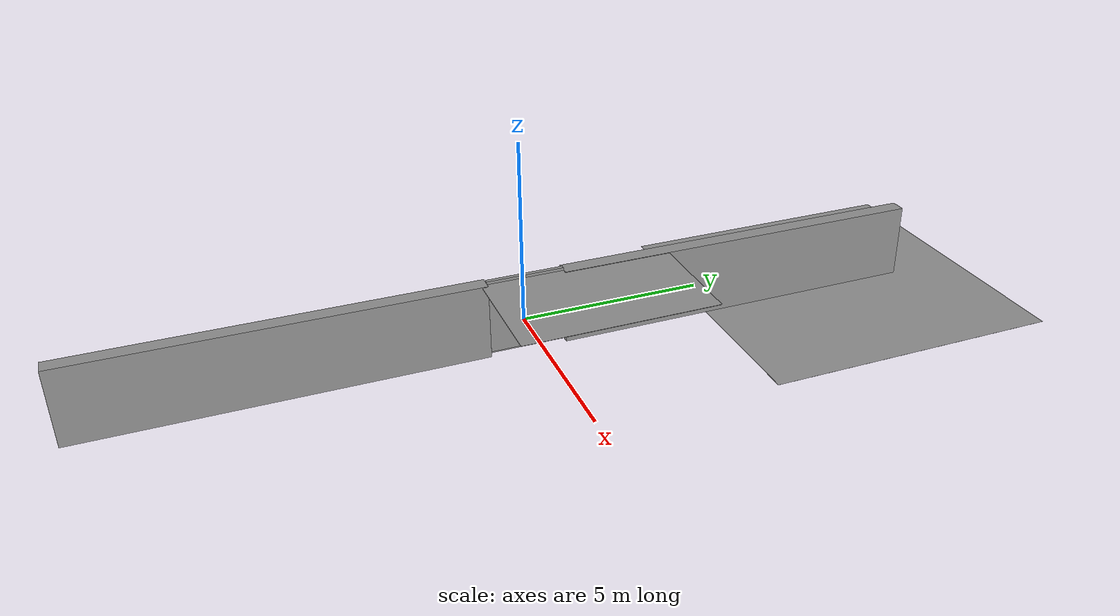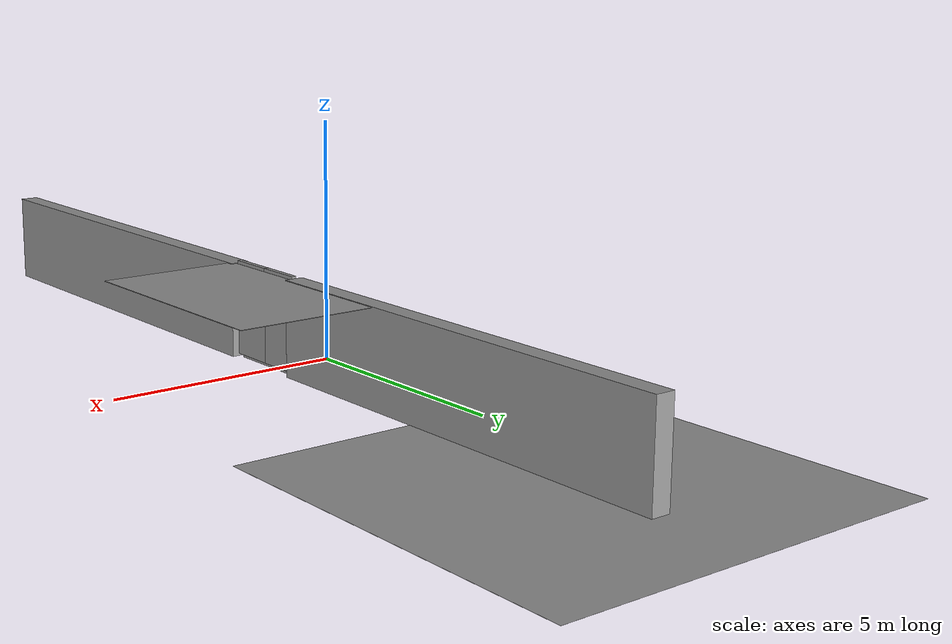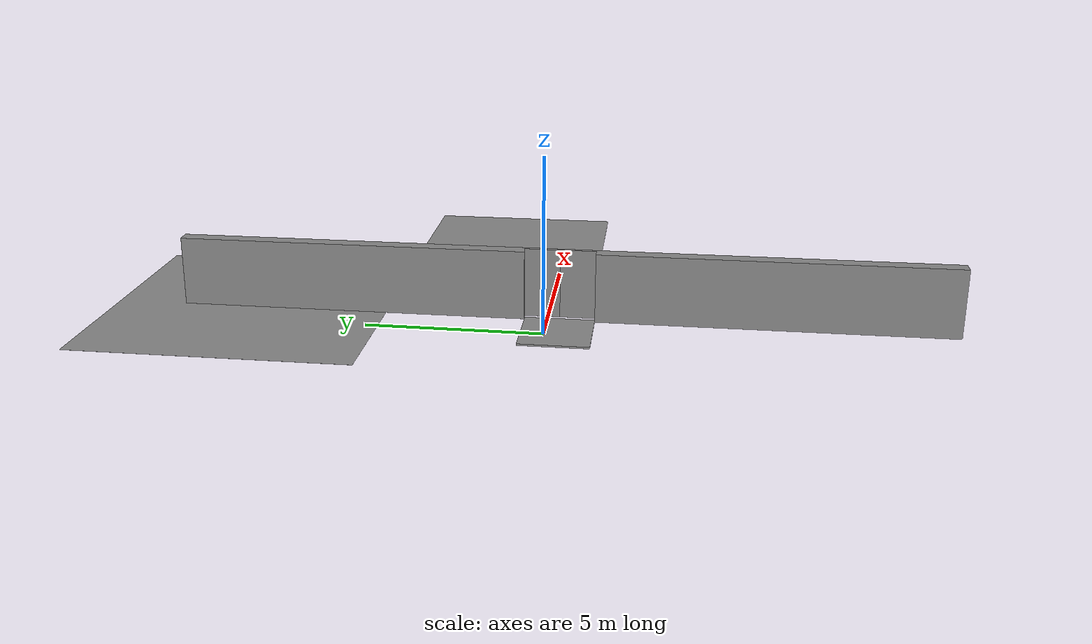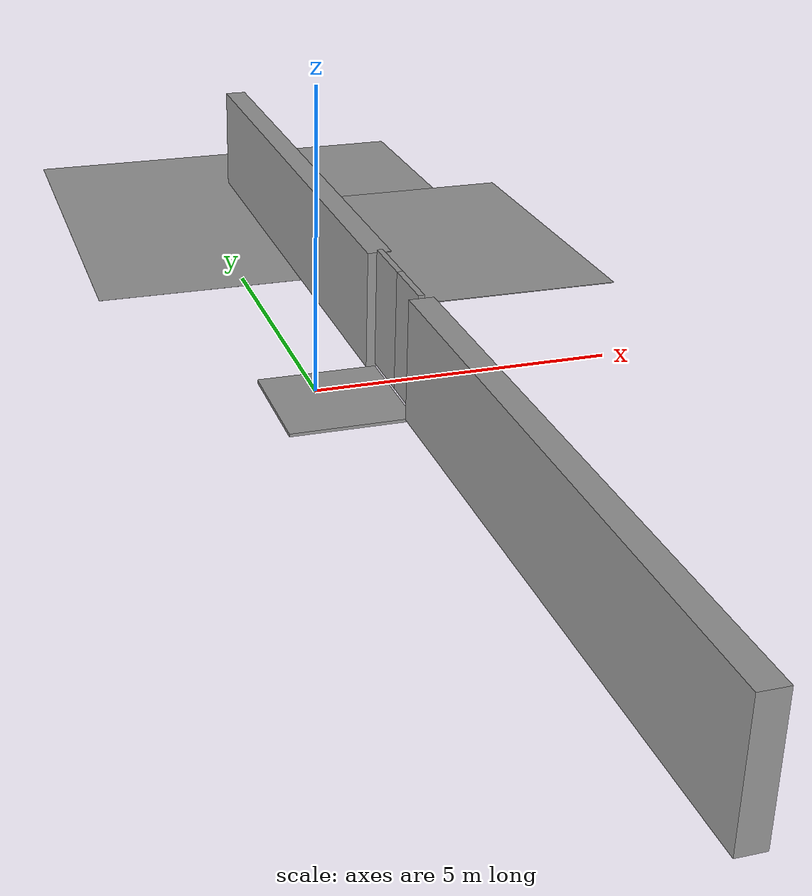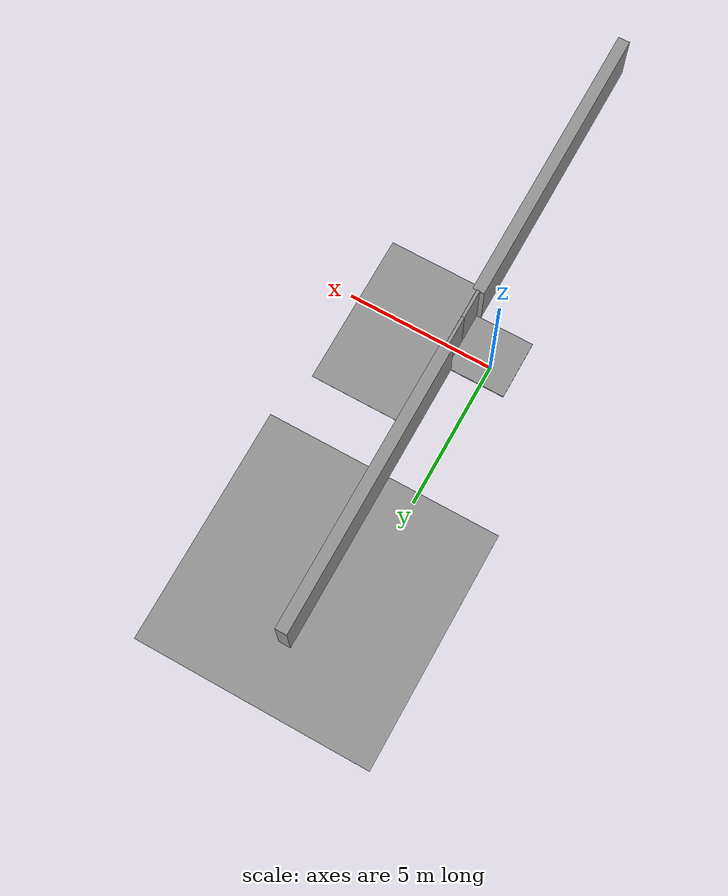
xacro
<?xml version="1.0"?>
<robot name="elevator" xmlns:xacro="http://www.ros.org/wiki/xacro">

  <xacro:property name="M_PI" value="3.141592653589793" />
  <xacro:property name="storey_height" value="2" />
  <xacro:property name="elev_door_height" value="2" />
  <xacro:property name="wall_x_loc" value="1.25" />

  <link name="world" />

  <!-- floor 1 -->
  <joint name="floor1_joint" type="fixed">
    <parent link="world" />
    <origin xyz="${wall_x_loc} 0.65 0.0" rpy="0 0 0" />
    <child link="floor1_link" />
  </joint>
  <link name="floor1_link">
    <inertial>
      <mass value="100" />
      <com xyz="0 0 0.0" />
      <inertia ixx="10" ixy="0"  ixz="0"
                        iyy="10" iyz="0"
                                 izz="10" />
    </inertial>
    <visual>
      <origin xyz="0 8 0.001" rpy="0 0 0" />
      <geometry name="floor1_visual_geom">
        <box size="8 8 0.002" />
      </geometry>
    </visual>
    <collision>
      <origin xyz="0 8 0.001" rpy="0.0 0.0 0.0" />
      <geometry name="floor1_collision_geom">
        <box size="8 8 0.002" />
      </geometry>
    </collision>
  </link>
  <gazebo reference="floor1_link">
    <material>PR2/Grey</material>
    <mu1>50.0</mu1>
    <mu2>50.0</mu2>
    <kp>1000000000.0</kp>
    <kd>1.0</kd>
  </gazebo>

  <!-- floor 2 -->
  <joint name="floor2_joint" type="fixed">
    <parent link="world" />
    <origin xyz="2.82  1  ${storey_height - 0.02}" rpy="0 0 0" />
    <child link="floor2_link" />
  </joint>
  <link name="floor2_link">
    <inertial>
      <mass value="100" />
      <com xyz="0 0 0" />
      <inertia ixx="10" ixy="0"  ixz="0"
                        iyy="10" iyz="0"
                                 izz="10" />
    </inertial>
    <visual>
      <origin xyz="0 0 0.001" rpy="0 0 0" />
      <geometry name="floor2_visual_geom">
        <box size="3 5 0.01" />
      </geometry>
    </visual>
    <collision>
      <origin xyz="0 0 0.001" rpy="0 0 0" />
      <geometry name="floor2_collision_geom">
        <box size="3 5 0.01" />
      </geometry>
    </collision>
  </link>
  <gazebo reference="floor2_link">
    <material>PR2/Grey</material>
    <mu1>50.0</mu1>
    <mu2>50.0</mu2>
    <kp>1000000000.0</kp>
    <kd>1.0</kd>
  </gazebo>

  <!-- RHS Door -->
  <joint name="wall_rhs_joint" type="fixed" >
    <parent link="floor1_link" />
    <origin xyz="0 0.0 0" rpy="0 0 0" />
    <child link="wall_rhs_link" />
  </joint>
  <link name="wall_rhs_link">
    <inertial>
      <mass value="100" />
      <com xyz="0 5 1" />
      <inertia ixx="10" ixy="0"  ixz="0"
                        iyy="10" iyz="0"
                                 izz="10" />
    </inertial>
    <visual>
      <origin xyz="0 5 1" rpy="0 0 0" />
      <geometry name="wall_rhs_visual_geom">
        <box size="0.4 10 ${storey_height}" />
      </geometry>
    </visual>
    <collision>
      <origin xyz="0 5 1" rpy="0.0 0.0 0.0" />
      <geometry name="wall_rhs_collision_geom">
        <box size="0.4 10 ${storey_height}" />
      </geometry>
    </collision>
  </link>
  <gazebo reference="wall_rhs_link">
    <material>PR2/Grey2</material>
    <laserRetro>1000</laserRetro>
    <selfCollide>false</selfCollide>
    <turnGravityOff>true</turnGravityOff>
  </gazebo>

  <joint name="elevator_door_rhs_joint" type="prismatic" >
    <parent link="wall_rhs_link" />
    <child link="elevator_door_rhs_link" />
    <origin xyz="0 0 0.05" rpy="0 0 0" />
    <axis xyz="0 1 0" />
    <dynamics damping="0.7" />
    <limit lower="0"  upper="1"  effort="100000"  velocity="100000" />
  </joint>

  <link name="elevator_door_rhs_link">
    <inertial >
      <mass value="30" />
      <com xyz="0.0 -0.5 1.0" />
      <inertia  ixx="1.0" ixy="0.0" ixz="0.0"
                          iyy="1.0" iyz="0.0"
                                    izz="3.0" />
    </inertial>
    <visual >
      <origin xyz="0.0 -0.5 1.0" rpy="0 0 ${M_PI}" />
      <geometry name="sholder_roll_mesh_file">
        <box size="0.1 1.0 ${elev_door_height}" />
      </geometry>
    </visual>
    <collision >
      <origin xyz="0.0 -0.5 1.0" rpy="0 0 ${M_PI}" />
      <geometry name="door_collision_geom">
        <box size="0.1 1.0 ${elev_door_height}" />
      </geometry>
    </collision>
  </link>
  <gazebo reference="elevator_door_rhs_link">
    <material>PR2/Grey</material>
    <laserRetro>2000</laserRetro>
    <turnGravityOff>true</turnGravityOff>
    <selfCollide>false</selfCollide>
    <dampingFactor>0.01</dampingFactor>
  </gazebo>

  <!-- LHS Door -->

  <joint name="wall_lhs_joint" type="fixed" >
    <parent link="floor1_link" />
    <origin xyz="0 0.0 0" rpy="0 0 0" />
    <child link="wall_lhs_link" />
  </joint>
  <link name="wall_lhs_link">
    <inertial>
      <mass value="100" />
      <com xyz="0 -7 1" />
      <inertia ixx="10" ixy="0"  ixz="0"
                        iyy="10" iyz="0"
                                 izz="10" />
    </inertial>
    <visual>
      <origin xyz="0 -7 1" rpy="0 0 0" />
      <geometry name="wall_lhs_visual_geom">
        <box size="0.4 10 ${storey_height}" />
      </geometry>
    </visual>
    <collision>
      <origin xyz="0 -7 1" rpy="0.0 0.0 0.0" />
      <geometry name="wall_lhs_collision_geom">
        <box size="0.4 10 ${storey_height}" />
      </geometry>
    </collision>
  </link>
  <gazebo reference="wall_lhs_link">
    <material>PR2/Grey2</material>
    <laserRetro>1000</laserRetro>
    <selfCollide>false</selfCollide>
    <turnGravityOff>true</turnGravityOff>
  </gazebo>

  <joint name="elevator_door_lhs_joint" type="prismatic" >
    <parent link="wall_lhs_link" />
    <child link="elevator_door_lhs_link" />
    <origin xyz="0 0 0.05" rpy="0 0 0" />
    <axis xyz="0 -1 0" />
    <dynamics damping="0.7" />
    <limit lower="0"  upper="1"  effort="100000"  velocity="100000" />
  </joint>

  <link name="elevator_door_lhs_link">
    <inertial >
      <mass value="30" />
      <com xyz="0.0 -1.5 1.0" />
      <inertia  ixx="1.0" ixy="0.0" ixz="0.0"
                          iyy="1.0" iyz="0.0"
                                    izz="3.0" />
    </inertial>
    <visual >
      <origin xyz="0.0 -1.5 1.0" rpy="0 0 ${M_PI}" />
      <geometry name="sholder_roll_mesh_file">
        <box size="0.1 1.0 ${elev_door_height}" />
      </geometry>
    </visual>
    <collision >
      <origin xyz="0.0 -1.5 1.0" rpy="0 0 ${M_PI}" />
      <geometry name="door_collision_geom">
        <box size="0.1 1.0 ${elev_door_height}" />
      </geometry>
    </collision>
  </link>
  <gazebo reference="elevator_door_lhs_link">
    <material>PR2/Grey</material>
    <laserRetro>2000</laserRetro>
    <turnGravityOff>true</turnGravityOff>
    <selfCollide>false</selfCollide>
    <dampingFactor>0.01</dampingFactor>
  </gazebo>

  <!-- Elevator car -->

  <joint name="elevator_car_joint" type="prismatic" >
    <parent link="wall_lhs_link" />
    <child link="elevator_car_link" />
    <origin xyz="0 0 0" rpy="0 0 0" />
    <axis xyz="0 0 1" />
    <dynamics damping="0.2" />
    <limit lower="0"  upper="2"  effort="10"  velocity="10" />
  </joint>

  <link name="elevator_car_link">
    <inertial >
      <mass value="30" />
      <inertia  ixx="1.0" ixy="0.0" ixz="0.0"
                          iyy="1.0" iyz="0.0"
                                    izz="3.0" />
    </inertial>
    <visual >
      <origin xyz="-1.05 -1.0  -0.02" rpy="0 0 0" />
      <geometry name="elevator_car_visual">
        <box size="2.0  1.99  0.05" />
      </geometry>
    </visual>
    <collision >
      <origin xyz="-1.05 -1.0  -0.02" rpy="0 0 0" />
      <geometry name="elevator_car_collision">
        <box size="2.0  1.99  0.05" />
      </geometry>
    </collision>
  </link>
  <gazebo reference="elevator_car_link">
    <material>PR2/Grey</material>
    <laserRetro>2000</laserRetro>
    <turnGravityOff>true</turnGravityOff>
    <selfCollide>false</selfCollide>
    <dampingFactor>0.01</dampingFactor>
  </gazebo>

  <!-- Controllers and transmissions -->
  <gazebo>
    <plugin name="gazebo_ros_control" filename="libgazebo_ros_control.so">
      <robotNamespace>elevator_bot</robotNamespace>
      <robotSimType>gazebo_ros_control/DefaultRobotHWSim</robotSimType>
      <legacyModeNS>true</legacyModeNS>
    </plugin>
  </gazebo>

  <transmission name="trans_elevator_door_rhs">
    <type>transmission_interface/SimpleTransmission</type>
    <joint name="elevator_door_rhs_joint">
      <hardwareInterface>hardware_interface/EffortJointInterface</hardwareInterface>
    </joint>
    <actuator name="elevator_door_rhs_motor">
      <hardwareInterface>hardware_interface/EffortJointInterface</hardwareInterface>
      <mechanicalReduction>1</mechanicalReduction>
    </actuator>
  </transmission>

  <transmission name="trans_elevator_door_lhs">
    <type>transmission_interface/SimpleTransmission</type>
    <joint name="elevator_door_lhs_joint">
      <hardwareInterface>hardware_interface/EffortJointInterface</hardwareInterface>
    </joint>
    <actuator name="elevator_door_lhs_motor">
      <hardwareInterface>hardware_interface/EffortJointInterface</hardwareInterface>
      <mechanicalReduction>1</mechanicalReduction>
    </actuator>
  </transmission>

  <transmission name="trans_elevator_car">
    <type>transmission_interface/SimpleTransmission</type>
    <joint name="elevator_car_joint">
      <hardwareInterface>hardware_interface/PositionJointInterface</hardwareInterface>
    </joint>
    <actuator name="elevator_car_motor">
      <hardwareInterface>hardware_interface/PositionJointInterface</hardwareInterface>
      <mechanicalReduction>1</mechanicalReduction>
    </actuator>
  </transmission>

</robot>
